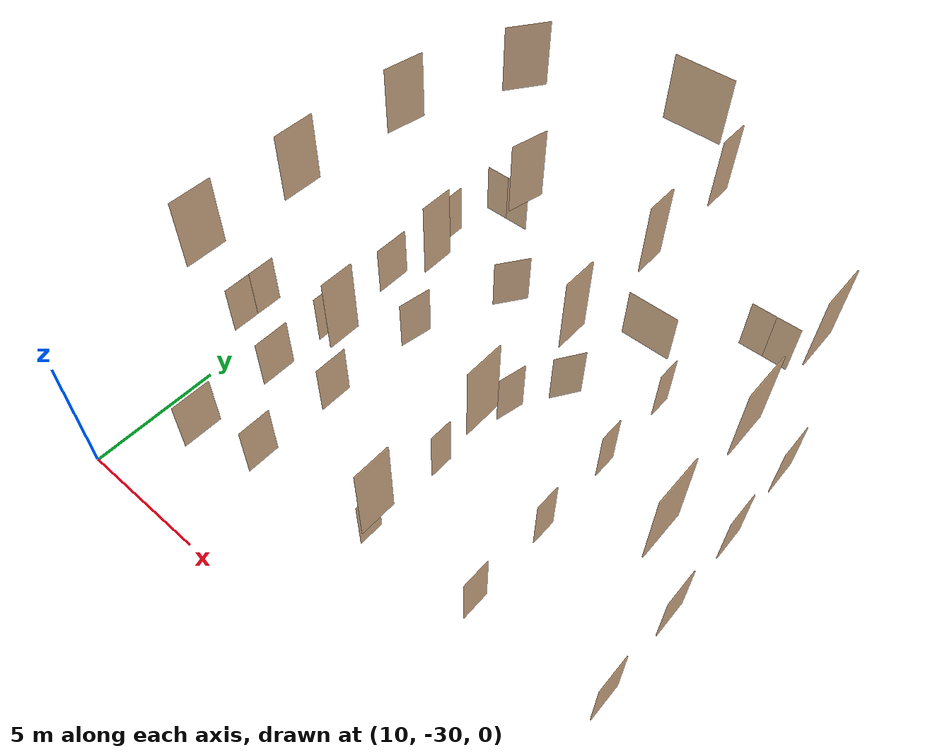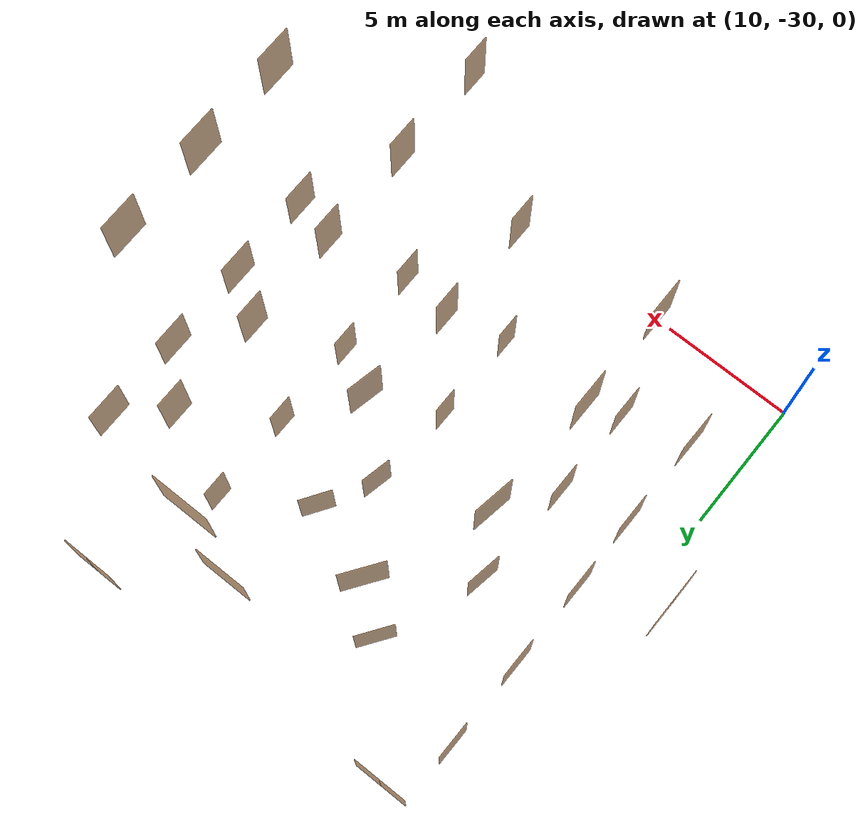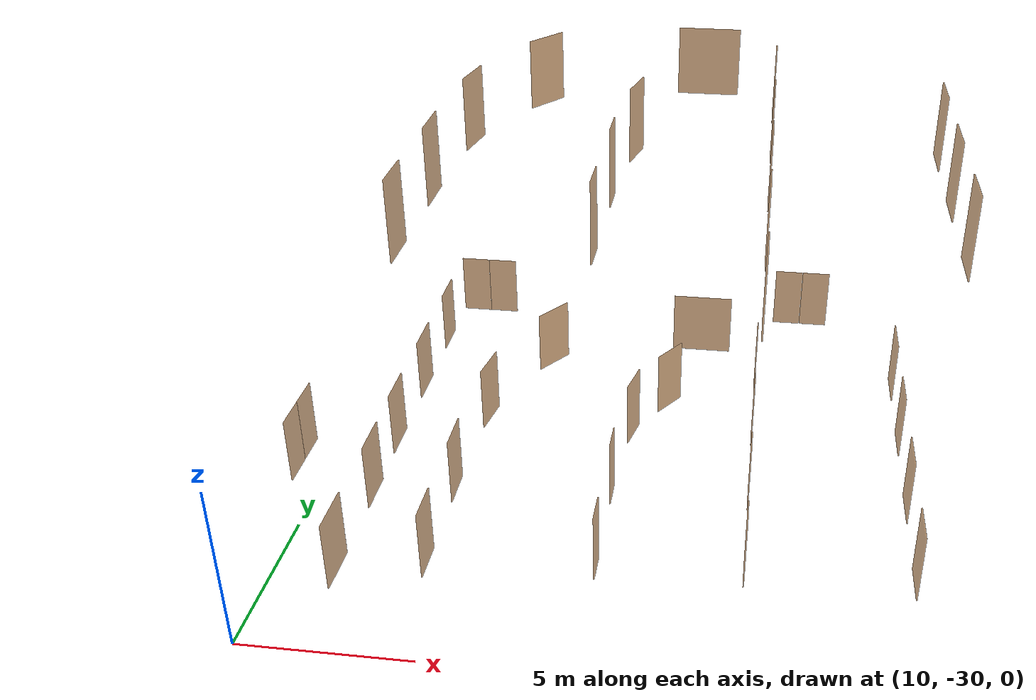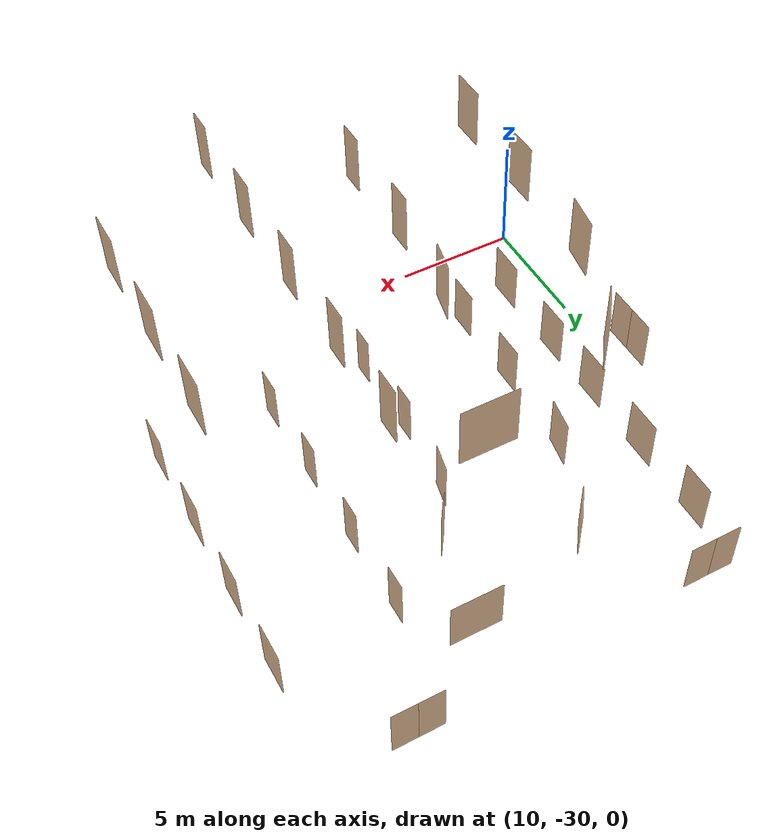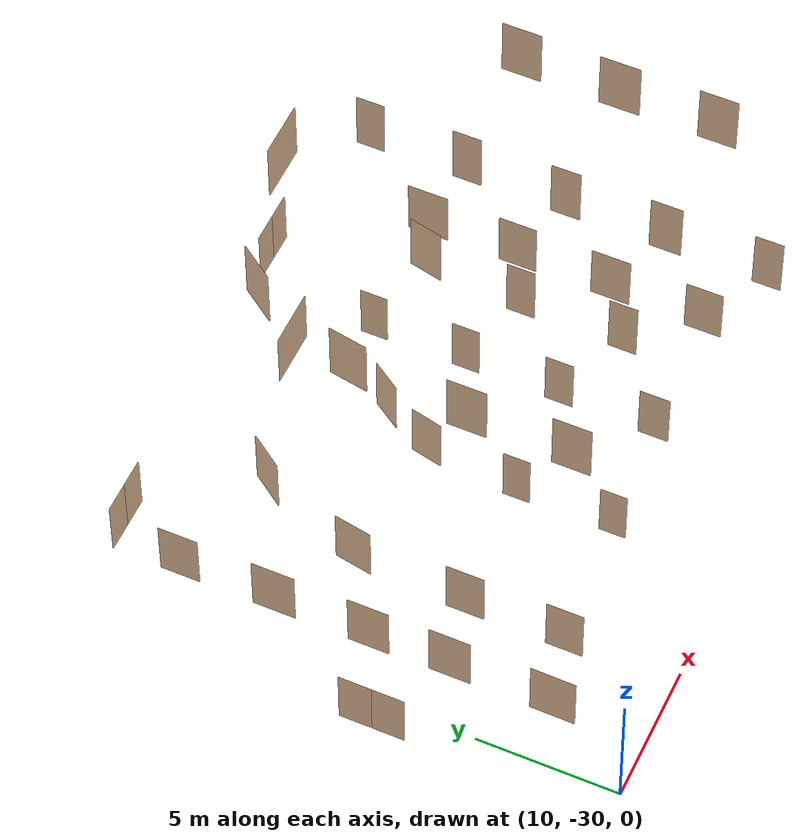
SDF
<sdf version="1.7">
 <world name="world">
  <include><uri>model://sun</uri></include>
  <model name="L1_left_consult_rm_13_outer">
   <pose>16.03554863274491 -14.728456597823172 0.0 0 0 0.9593844290063241</pose>
   <static>true</static>
   <link name="right">
    <pose>0 0 1.11 0 0 0</pose>
    <visual name="right_visual">
     <geometry><box><size>1.4433538767392087 0.03 2.2</size></box></geometry>
     <material><ambient>0.5 0.25 0 0.6</ambient><diffuse>0.5 0.25 0 0.6</diffuse></material>
    </visual>
    <collision name="right_collision">
     <geometry><box><size>1.4433538767392087 0.03 2.2</size></box></geometry>
     <surface><contact><collide_bitmask>0x02</collide_bitmask></contact></surface>
    </collision>
    <inertial>
     <mass>50.0</mass>
     <inertia><ixx>20.17041666666667</ixx><iyy>28.8469600562421</iyy><izz>8.684043389575429</izz></inertia>
    </inertial>
   </link>
   <joint name="right_joint" type="prismatic">
    <parent>world</parent>
    <child>right</child>
    <axis>
     <xyz>1 0 0</xyz>
     <limit><lower>0.0</lower><upper>1.4533538767392087</upper><effort>500.0</effort></limit>
    </axis>
   </joint>
  </model>
  <model name="L1_left_consult_rm_12_outer">
   <pose>14.50538056228608 -18.5739740779201 0.0 0 0 1.402401946784635</pose>
   <static>true</static>
   <link name="right">
    <pose>0 0 1.11 0 0 0</pose>
    <visual name="right_visual">
     <geometry><box><size>1.3727291591386541 0.03 2.2</size></box></geometry>
     <material><ambient>0.5 0.25 0 0.6</ambient><diffuse>0.5 0.25 0 0.6</diffuse></material>
    </visual>
    <collision name="right_collision">
     <geometry><box><size>1.3727291591386541 0.03 2.2</size></box></geometry>
     <surface><contact><collide_bitmask>0x02</collide_bitmask></contact></surface>
    </collision>
    <inertial>
     <mass>50.0</mass>
     <inertia><ixx>20.17041666666667</ixx><iyy>28.018272268122992</iyy><izz>7.855355601456319</izz></inertia>
    </inertial>
   </link>
   <joint name="right_joint" type="prismatic">
    <parent>world</parent>
    <child>right</child>
    <axis>
     <xyz>1 0 0</xyz>
     <limit><lower>0.0</lower><upper>1.3827291591386541</upper><effort>500.0</effort></limit>
    </axis>
   </joint>
  </model>
  <model name="L1_left_consult_rm_4_outer">
   <pose>28.179085419791573 -25.272043382946833 0.0 0 0 1.5707963267948966</pose>
   <static>true</static>
   <link name="right">
    <pose>0 0 1.11 0 0 0</pose>
    <visual name="right_visual">
     <geometry><box><size>1.3399250028845076 0.03 2.2</size></box></geometry>
     <material><ambient>0.5 0.25 0 0.6</ambient><diffuse>0.5 0.25 0 0.6</diffuse></material>
    </visual>
    <collision name="right_collision">
     <geometry><box><size>1.3399250028845076 0.03 2.2</size></box></geometry>
     <surface><contact><collide_bitmask>0x02</collide_bitmask></contact></surface>
    </collision>
    <inertial>
     <mass>50.0</mass>
     <inertia><ixx>20.17041666666667</ixx><iyy>27.64749588897937</iyy><izz>7.484579222312698</izz></inertia>
    </inertial>
   </link>
   <joint name="right_joint" type="prismatic">
    <parent>world</parent>
    <child>right</child>
    <axis>
     <xyz>1 0 0</xyz>
     <limit><lower>0.0</lower><upper>1.3499250028845076</upper><effort>500.0</effort></limit>
    </axis>
   </joint>
  </model>
  <model name="L1_left_consult_rm_3_outer">
   <pose>28.179085419791573 -21.845877081650727 0.0 0 0 1.5707963267948966</pose>
   <static>true</static>
   <link name="right">
    <pose>0 0 1.11 0 0 0</pose>
    <visual name="right_visual">
     <geometry><box><size>1.4299792315680138 0.03 2.2</size></box></geometry>
     <material><ambient>0.5 0.25 0 0.6</ambient><diffuse>0.5 0.25 0 0.6</diffuse></material>
    </visual>
    <collision name="right_collision">
     <geometry><box><size>1.4299792315680138 0.03 2.2</size></box></geometry>
     <surface><contact><collide_bitmask>0x02</collide_bitmask></contact></surface>
    </collision>
    <inertial>
     <mass>50.0</mass>
     <inertia><ixx>20.17041666666667</ixx><iyy>28.686835844649366</iyy><izz>8.523919177982698</izz></inertia>
    </inertial>
   </link>
   <joint name="right_joint" type="prismatic">
    <parent>world</parent>
    <child>right</child>
    <axis>
     <xyz>1 0 0</xyz>
     <limit><lower>0.0</lower><upper>1.4399792315680138</upper><effort>500.0</effort></limit>
    </axis>
   </joint>
  </model>
  <model name="L1_left_consult_rm_2_outer">
   <pose>28.179085419791573 -18.38420060766895 0.0 0 0 1.5707963267948966</pose>
   <static>true</static>
   <link name="right">
    <pose>0 0 1.11 0 0 0</pose>
    <visual name="right_visual">
     <geometry><box><size>1.3918306988192783 0.03 2.2</size></box></geometry>
     <material><ambient>0.5 0.25 0 0.6</ambient><diffuse>0.5 0.25 0 0.6</diffuse></material>
    </visual>
    <collision name="right_collision">
     <geometry><box><size>1.3918306988192783 0.03 2.2</size></box></geometry>
     <surface><contact><collide_bitmask>0x02</collide_bitmask></contact></surface>
    </collision>
    <inertial>
     <mass>50.0</mass>
     <inertia><ixx>20.17041666666667</ixx><iyy>28.23830289239901</iyy><izz>8.075386225732336</izz></inertia>
    </inertial>
   </link>
   <joint name="right_joint" type="prismatic">
    <parent>world</parent>
    <child>right</child>
    <axis>
     <xyz>1 0 0</xyz>
     <limit><lower>0.0</lower><upper>1.4018306988192784</upper><effort>500.0</effort></limit>
    </axis>
   </joint>
  </model>
  <model name="L1_left_consult_rm_1_outer">
   <pose>28.179085419791573 -15.017895465559029 0.0 0 0 -1.5707963267948966</pose>
   <static>true</static>
   <link name="right">
    <pose>0 0 1.11 0 0 0</pose>
    <visual name="right_visual">
     <geometry><box><size>1.4871885696703975 0.03 2.2</size></box></geometry>
     <material><ambient>0.5 0.25 0 0.6</ambient><diffuse>0.5 0.25 0 0.6</diffuse></material>
    </visual>
    <collision name="right_collision">
     <geometry><box><size>1.4871885696703975 0.03 2.2</size></box></geometry>
     <surface><contact><collide_bitmask>0x02</collide_bitmask></contact></surface>
    </collision>
    <inertial>
     <mass>50.0</mass>
     <inertia><ixx>20.17041666666667</ixx><iyy>29.38220767399285</iyy><izz>9.219291007326179</izz></inertia>
    </inertial>
   </link>
   <joint name="right_joint" type="prismatic">
    <parent>world</parent>
    <child>right</child>
    <axis>
     <xyz>1 0 0</xyz>
     <limit><lower>0.0</lower><upper>1.4971885696703975</upper><effort>500.0</effort></limit>
    </axis>
   </joint>
  </model>
  <model name="L1_left_consult_rm_10_outer">
   <pose>14.307718933887172 -26.181039190800377 0.0 0 0 -1.5707963267948966</pose>
   <static>true</static>
   <link name="right">
    <pose>0 0 1.11 0 0 0</pose>
    <visual name="right_visual">
     <geometry><box><size>1.2997034729433474 0.03 2.2</size></box></geometry>
     <material><ambient>0.5 0.25 0 0.6</ambient><diffuse>0.5 0.25 0 0.6</diffuse></material>
    </visual>
    <collision name="right_collision">
     <geometry><box><size>1.2997034729433474 0.03 2.2</size></box></geometry>
     <surface><contact><collide_bitmask>0x02</collide_bitmask></contact></surface>
    </collision>
    <inertial>
     <mass>50.0</mass>
     <inertia><ixx>20.17041666666667</ixx><iyy>27.205121323254165</iyy><izz>7.0422046565874945</izz></inertia>
    </inertial>
   </link>
   <joint name="right_joint" type="prismatic">
    <parent>world</parent>
    <child>right</child>
    <axis>
     <xyz>1 0 0</xyz>
     <limit><lower>0.0</lower><upper>1.3097034729433474</upper><effort>500.0</effort></limit>
    </axis>
   </joint>
  </model>
  <model name="L1_left_consult_rm_11_outer">
   <pose>14.307718933887172 -22.673729856544 0.0 0 0 -1.5707963267948966</pose>
   <static>true</static>
   <link name="right">
    <pose>0 0 1.11 0 0 0</pose>
    <visual name="right_visual">
     <geometry><box><size>1.346359370793431 0.03 2.2</size></box></geometry>
     <material><ambient>0.5 0.25 0 0.6</ambient><diffuse>0.5 0.25 0 0.6</diffuse></material>
    </visual>
    <collision name="right_collision">
     <geometry><box><size>1.346359370793431 0.03 2.2</size></box></geometry>
     <surface><contact><collide_bitmask>0x02</collide_bitmask></contact></surface>
    </collision>
    <inertial>
     <mass>50.0</mass>
     <inertia><ixx>20.17041666666667</ixx><iyy>27.719514813847017</iyy><izz>7.556598147180346</izz></inertia>
    </inertial>
   </link>
   <joint name="right_joint" type="prismatic">
    <parent>world</parent>
    <child>right</child>
    <axis>
     <xyz>1 0 0</xyz>
     <limit><lower>0.0</lower><upper>1.356359370793431</upper><effort>500.0</effort></limit>
    </axis>
   </joint>
  </model>
  <model name="L1_left_treatment_1">
   <pose>11.806230529595025 -13.583354486365922 0.0 0 0 1.5707963267948966</pose>
   <link name="right">
    <pose>0 0 1.11 0 0 0</pose>
    <visual name="right_visual">
     <geometry><box><size>1.418106611284182 0.03 2.2</size></box></geometry>
     <material><ambient>0.5 0.25 0 0.6</ambient><diffuse>0.5 0.25 0 0.6</diffuse></material>
    </visual>
    <collision name="right_collision">
     <geometry><box><size>1.418106611284182 0.03 2.2</size></box></geometry>
     <surface><contact><collide_bitmask>0x02</collide_bitmask></contact></surface>
    </collision>
    <inertial>
     <mass>50.0</mass>
     <inertia><ixx>20.17041666666667</ixx><iyy>28.545943170699616</iyy><izz>8.383026504032943</izz></inertia>
    </inertial>
   </link>
   <joint name="right_joint" type="prismatic">
    <parent>world</parent>
    <child>right</child>
    <axis>
     <xyz>1 0 0</xyz>
     <limit><lower>0.0</lower><upper>1.428106611284182</upper><effort>500.0</effort></limit>
    </axis>
   </joint>
   <plugin name="door" filename="libdoor.so">
    <v_max_door>0.2</v_max_door>
    <a_max_door>0.2</a_max_door>
    <a_nom_door>0.08</a_nom_door>
    <dx_min_door>0.001</dx_min_door>
    <f_max_door>100.0</f_max_door>
    <door name="L1_left_treatment_1" type="SlidingDoor" left_joint_name="empty_joint" right_joint_name="right_joint"/>
   </plugin>
  </model>
  <model name="L1_left_negative_air_pressure">
   <pose>11.837715857082431 -26.84586554363296 0.0 0 0 -1.5791183096276138</pose>
   <link name="right">
    <pose>0 0 1.11 0 0 0</pose>
    <visual name="right_visual">
     <geometry><box><size>1.5784285274029304 0.03 2.2</size></box></geometry>
     <material><ambient>0.5 0.25 0 0.6</ambient><diffuse>0.5 0.25 0 0.6</diffuse></material>
    </visual>
    <collision name="right_collision">
     <geometry><box><size>1.5784285274029304 0.03 2.2</size></box></geometry>
     <surface><contact><collide_bitmask>0x02</collide_bitmask></contact></surface>
    </collision>
    <inertial>
     <mass>50.0</mass>
     <inertia><ixx>20.17041666666667</ixx><iyy>30.547652567164103</iyy><izz>10.384735900497432</izz></inertia>
    </inertial>
   </link>
   <joint name="right_joint" type="prismatic">
    <parent>world</parent>
    <child>right</child>
    <axis>
     <xyz>1 0 0</xyz>
     <limit><lower>0.0</lower><upper>1.5884285274029304</upper><effort>500.0</effort></limit>
    </axis>
   </joint>
   <plugin name="door" filename="libdoor.so">
    <v_max_door>0.2</v_max_door>
    <a_max_door>0.2</a_max_door>
    <a_nom_door>0.08</a_nom_door>
    <dx_min_door>0.001</dx_min_door>
    <f_max_door>100.0</f_max_door>
    <door name="L1_left_negative_air_pressure" type="SlidingDoor" left_joint_name="empty_joint" right_joint_name="right_joint"/>
   </plugin>
  </model>
  <model name="L1_left_treatment_2">
   <pose>11.806230529595025 -16.992142609899634 0.0 0 0 -1.5707963267948966</pose>
   <static>true</static>
   <link name="right">
    <pose>0 0 1.11 0 0 0</pose>
    <visual name="right_visual">
     <geometry><box><size>1.5319868466597464 0.03 2.2</size></box></geometry>
     <material><ambient>0.5 0.25 0 0.6</ambient><diffuse>0.5 0.25 0 0.6</diffuse></material>
    </visual>
    <collision name="right_collision">
     <geometry><box><size>1.5319868466597464 0.03 2.2</size></box></geometry>
     <surface><contact><collide_bitmask>0x02</collide_bitmask></contact></surface>
    </collision>
    <inertial>
     <mass>50.0</mass>
     <inertia><ixx>20.17041666666667</ixx><iyy>29.945765409743643</iyy><izz>9.782848743076972</izz></inertia>
    </inertial>
   </link>
   <joint name="right_joint" type="prismatic">
    <parent>world</parent>
    <child>right</child>
    <axis>
     <xyz>1 0 0</xyz>
     <limit><lower>0.0</lower><upper>1.5419868466597464</upper><effort>500.0</effort></limit>
    </axis>
   </joint>
  </model>
  <model name="L1_left_counsel_1">
   <pose>11.806230529595025 -20.376902811430348 0.0 0 0 1.5707963267948966</pose>
   <static>true</static>
   <link name="right">
    <pose>0 0 1.11 0 0 0</pose>
    <visual name="right_visual">
     <geometry><box><size>1.4607242029152745 0.03 2.2</size></box></geometry>
     <material><ambient>0.5 0.25 0 0.6</ambient><diffuse>0.5 0.25 0 0.6</diffuse></material>
    </visual>
    <collision name="right_collision">
     <geometry><box><size>1.4607242029152745 0.03 2.2</size></box></geometry>
     <surface><contact><collide_bitmask>0x02</collide_bitmask></contact></surface>
    </collision>
    <inertial>
     <mass>50.0</mass>
     <inertia><ixx>20.17041666666667</ixx><iyy>29.057146654093604</iyy><izz>8.894229987426936</izz></inertia>
    </inertial>
   </link>
   <joint name="right_joint" type="prismatic">
    <parent>world</parent>
    <child>right</child>
    <axis>
     <xyz>1 0 0</xyz>
     <limit><lower>0.0</lower><upper>1.4707242029152745</upper><effort>500.0</effort></limit>
    </axis>
   </joint>
  </model>
  <model name="L1_left_counsel_4">
   <pose>11.84769047344334 -23.23487942771434 0.0 0 0 -1.5707963267948966</pose>
   <static>true</static>
   <link name="right">
    <pose>0 0 1.11 0 0 0</pose>
    <visual name="right_visual">
     <geometry><box><size>1.465758624668284 0.03 2.2</size></box></geometry>
     <material><ambient>0.5 0.25 0 0.6</ambient><diffuse>0.5 0.25 0 0.6</diffuse></material>
    </visual>
    <collision name="right_collision">
     <geometry><box><size>1.465758624668284 0.03 2.2</size></box></geometry>
     <surface><contact><collide_bitmask>0x02</collide_bitmask></contact></surface>
    </collision>
    <inertial>
     <mass>50.0</mass>
     <inertia><ixx>20.17041666666667</ixx><iyy>29.118534774122757</iyy><izz>8.955618107456084</izz></inertia>
    </inertial>
   </link>
   <joint name="right_joint" type="prismatic">
    <parent>world</parent>
    <child>right</child>
    <axis>
     <xyz>1 0 0</xyz>
     <limit><lower>0.0</lower><upper>1.4757586246682841</upper><effort>500.0</effort></limit>
    </axis>
   </joint>
  </model>
  <model name="L1_left_counsel_3">
   <pose>9.016407061266882 -22.377170108841987 0.0 0 0 -1.5707963267948966</pose>
   <static>true</static>
   <link name="right">
    <pose>0 0 1.11 0 0 0</pose>
    <visual name="right_visual">
     <geometry><box><size>1.1436094765585965 0.03 2.2</size></box></geometry>
     <material><ambient>0.5 0.25 0 0.6</ambient><diffuse>0.5 0.25 0 0.6</diffuse></material>
    </visual>
    <collision name="right_collision">
     <geometry><box><size>1.1436094765585965 0.03 2.2</size></box></geometry>
     <surface><contact><collide_bitmask>0x02</collide_bitmask></contact></surface>
    </collision>
    <inertial>
     <mass>50.0</mass>
     <inertia><ixx>20.17041666666667</ixx><iyy>25.616010978644287</iyy><izz>5.453094311977613</izz></inertia>
    </inertial>
   </link>
   <joint name="right_joint" type="prismatic">
    <parent>world</parent>
    <child>right</child>
    <axis>
     <xyz>1 0 0</xyz>
     <limit><lower>0.0</lower><upper>1.1536094765585965</upper><effort>500.0</effort></limit>
    </axis>
   </joint>
  </model>
  <model name="L1_left_counsel_2">
   <pose>9.016407061266882 -21.218930041152284 0.0 0 0 1.5707963267948966</pose>
   <static>true</static>
   <link name="right">
    <pose>0 0 1.11 0 0 0</pose>
    <visual name="right_visual">
     <geometry><box><size>1.1528706588208146 0.03 2.2</size></box></geometry>
     <material><ambient>0.5 0.25 0 0.6</ambient><diffuse>0.5 0.25 0 0.6</diffuse></material>
    </visual>
    <collision name="right_collision">
     <geometry><box><size>1.1528706588208146 0.03 2.2</size></box></geometry>
     <surface><contact><collide_bitmask>0x02</collide_bitmask></contact></surface>
    </collision>
    <inertial>
     <mass>50.0</mass>
     <inertia><ixx>20.17041666666667</ixx><iyy>25.70462814987475</iyy><izz>5.541711483208079</izz></inertia>
    </inertial>
   </link>
   <joint name="right_joint" type="prismatic">
    <parent>world</parent>
    <child>right</child>
    <axis>
     <xyz>1 0 0</xyz>
     <limit><lower>0.0</lower><upper>1.1628706588208146</upper><effort>500.0</effort></limit>
    </axis>
   </joint>
  </model>
  <model name="L1_existing_ahu">
   <pose>12.856634360216926 -11.116353217183963 0.0 0 0 -3.1406699672959486</pose>
   <static>true</static>
   <link name="right">
    <pose>0.5252021388763539 0 1.11 0 0 0</pose>
    <visual name="right_visual">
     <geometry><box><size>1.0404042777527078 0.03 2.2</size></box></geometry>
     <material><ambient>0.5 0.25 0 0.6</ambient><diffuse>0.5 0.25 0 0.6</diffuse></material>
    </visual>
    <collision name="right_collision">
     <geometry><box><size>1.0404042777527078 0.03 2.2</size></box></geometry>
     <surface><contact><collide_bitmask>0x02</collide_bitmask></contact></surface>
    </collision>
    <inertial>
     <mass>50.0</mass>
     <inertia><ixx>20.17041666666667</ixx><iyy>24.676837754858894</iyy><izz>4.513921088192224</izz></inertia>
    </inertial>
   </link>
   <joint name="right_joint" type="revolute">
    <parent>world</parent>
    <child>right</child>
    <axis><xyz>0 0 -1</xyz><limit><lower>0</lower><upper>1.57</upper></limit></axis>
    <pose>0.5252021388763539 0 0 0 0 0</pose>
   </joint>
   <link name="left">
    <pose>-0.5252021388763539 0 1.11 0 0 0</pose>
    <visual name="left_visual">
     <geometry><box><size>1.0404042777527078 0.03 2.2</size></box></geometry>
     <material><ambient>0.5 0.25 0 0.6</ambient><diffuse>0.5 0.25 0 0.6</diffuse></material>
    </visual>
    <collision name="left_collision">
     <geometry><box><size>1.0404042777527078 0.03 2.2</size></box></geometry>
     <surface><contact><collide_bitmask>0x02</collide_bitmask></contact></surface>
    </collision>
    <inertial>
     <mass>50.0</mass>
     <inertia><ixx>20.17041666666667</ixx><iyy>24.676837754858894</iyy><izz>4.513921088192224</izz></inertia>
    </inertial>
   </link>
   <joint name="left_joint" type="revolute">
    <parent>world</parent>
    <child>left</child>
    <axis><xyz>0 0 -1</xyz><limit><lower>-1.57</lower><upper>0</upper></limit></axis>
    <pose>-0.5252021388763539 0 0 0 0 0</pose>
   </joint>
  </model>
  <model name="L1_left_consult_rm_2_inner">
   <pose>23.381523787546655 -18.60085573631785 0.0 0 0 -1.5707963267948966</pose>
   <static>true</static>
   <link name="right">
    <pose>0 0 1.11 0 0 0</pose>
    <visual name="right_visual">
     <geometry><box><size>0.9945421329948851 0.03 2.2</size></box></geometry>
     <material><ambient>0.5 0.25 0 0.6</ambient><diffuse>0.5 0.25 0 0.6</diffuse></material>
    </visual>
    <collision name="right_collision">
     <geometry><box><size>0.9945421329948851 0.03 2.2</size></box></geometry>
     <surface><contact><collide_bitmask>0x02</collide_bitmask></contact></surface>
    </collision>
    <inertial>
     <mass>50.0</mass>
     <inertia><ixx>20.17041666666667</ixx><iyy>24.287975226258403</iyy><izz>4.125058559591733</izz></inertia>
    </inertial>
   </link>
   <joint name="right_joint" type="prismatic">
    <parent>world</parent>
    <child>right</child>
    <axis>
     <xyz>1 0 0</xyz>
     <limit><lower>0.0</lower><upper>1.0045421329948852</upper><effort>500.0</effort></limit>
    </axis>
   </joint>
  </model>
  <model name="L1_left_consult_rm_13_inner">
   <pose>20.473727933541035 -17.004284450598067 0.0 0 0 0.9869285289705991</pose>
   <static>true</static>
   <link name="right">
    <pose>0 0 1.11 0 0 0</pose>
    <visual name="right_visual">
     <geometry><box><size>1.2252035838140947 0.03 2.2</size></box></geometry>
     <material><ambient>0.5 0.25 0 0.6</ambient><diffuse>0.5 0.25 0 0.6</diffuse></material>
    </visual>
    <collision name="right_collision">
     <geometry><box><size>1.2252035838140947 0.03 2.2</size></box></geometry>
     <surface><contact><collide_bitmask>0x02</collide_bitmask></contact></surface>
    </collision>
    <inertial>
     <mass>50.0</mass>
     <inertia><ixx>20.17041666666667</ixx><iyy>26.421349257462094</iyy><izz>6.258432590795422</izz></inertia>
    </inertial>
   </link>
   <joint name="right_joint" type="revolute">
    <parent>world</parent>
    <child>right</child>
    <axis><xyz>0 0 -1</xyz><limit><lower>0</lower><upper>1.57</upper></limit></axis>
    <pose>0.6176017919070473 0 0 0 0 0</pose>
   </joint>
  </model>
  <model name="L1_left_consult_rm_12_inner">
   <pose>19.442438752355695 -18.948876966270543 0.0 0 0 1.3549047324942773</pose>
   <static>true</static>
   <link name="right">
    <pose>0 0 1.11 0 0 0</pose>
    <visual name="right_visual">
     <geometry><box><size>1.1707228872175774 0.03 2.2</size></box></geometry>
     <material><ambient>0.5 0.25 0 0.6</ambient><diffuse>0.5 0.25 0 0.6</diffuse></material>
    </visual>
    <collision name="right_collision">
     <geometry><box><size>1.1707228872175774 0.03 2.2</size></box></geometry>
     <surface><contact><collide_bitmask>0x02</collide_bitmask></contact></surface>
    </collision>
    <inertial>
     <mass>50.0</mass>
     <inertia><ixx>20.17041666666667</ixx><iyy>25.87746699439609</iyy><izz>5.714550327729419</izz></inertia>
    </inertial>
   </link>
   <joint name="right_joint" type="revolute">
    <parent>world</parent>
    <child>right</child>
    <axis><xyz>0 0 -1</xyz><limit><lower>0</lower><upper>1.57</upper></limit></axis>
    <pose>0.5903614436087887 0 0 0 0 0</pose>
   </joint>
  </model>
  <model name="L1_left_consult_rm_11_inner">
   <pose>19.167982000692298 -22.335117880081555 0.0 0 0 1.5707963267948966</pose>
   <static>true</static>
   <link name="right">
    <pose>0 0 1.11 0 0 0</pose>
    <visual name="right_visual">
     <geometry><box><size>0.960216530133456 0.03 2.2</size></box></geometry>
     <material><ambient>0.5 0.25 0 0.6</ambient><diffuse>0.5 0.25 0 0.6</diffuse></material>
    </visual>
    <collision name="right_collision">
     <geometry><box><size>0.960216530133456 0.03 2.2</size></box></geometry>
     <surface><contact><collide_bitmask>0x02</collide_bitmask></contact></surface>
    </collision>
    <inertial>
     <mass>50.0</mass>
     <inertia><ixx>20.17041666666667</ixx><iyy>24.00839910308973</iyy><izz>3.8454824364230595</izz></inertia>
    </inertial>
   </link>
   <joint name="right_joint" type="prismatic">
    <parent>world</parent>
    <child>right</child>
    <axis>
     <xyz>1 0 0</xyz>
     <limit><lower>0.0</lower><upper>0.970216530133456</upper><effort>500.0</effort></limit>
    </axis>
   </joint>
  </model>
  <model name="L1_left_consult_rm_10_inner">
   <pose>19.167982000692298 -25.7948963501404 0.0 0 0 1.5707963267948966</pose>
   <static>true</static>
   <link name="right">
    <pose>0 0 1.11 0 0 0</pose>
    <visual name="right_visual">
     <geometry><box><size>0.9495554017153205 0.03 2.2</size></box></geometry>
     <material><ambient>0.5 0.25 0 0.6</ambient><diffuse>0.5 0.25 0 0.6</diffuse></material>
    </visual>
    <collision name="right_collision">
     <geometry><box><size>0.9495554017153205 0.03 2.2</size></box></geometry>
     <surface><contact><collide_bitmask>0x02</collide_bitmask></contact></surface>
    </collision>
    <inertial>
     <mass>50.0</mass>
     <inertia><ixx>20.17041666666667</ixx><iyy>23.923564420528106</iyy><izz>3.760647753861432</izz></inertia>
    </inertial>
   </link>
   <joint name="right_joint" type="prismatic">
    <parent>world</parent>
    <child>right</child>
    <axis>
     <xyz>1 0 0</xyz>
     <limit><lower>0.0</lower><upper>0.9595554017153205</upper><effort>500.0</effort></limit>
    </axis>
   </joint>
  </model>
  <model name="L1_left_consult_rm_4_inner">
   <pose>23.381523787546655 -25.472760663051446 0.0 0 0 -1.5707963267948966</pose>
   <static>true</static>
   <link name="right">
    <pose>0 0 1.11 0 0 0</pose>
    <visual name="right_visual">
     <geometry><box><size>1.0858616976270115 0.03 2.2</size></box></geometry>
     <material><ambient>0.5 0.25 0 0.6</ambient><diffuse>0.5 0.25 0 0.6</diffuse></material>
    </visual>
    <collision name="right_collision">
     <geometry><box><size>1.0858616976270115 0.03 2.2</size></box></geometry>
     <surface><contact><collide_bitmask>0x02</collide_bitmask></contact></surface>
    </collision>
    <inertial>
     <mass>50.0</mass>
     <inertia><ixx>20.17041666666667</ixx><iyy>25.079565109889238</iyy><izz>4.916648443222564</izz></inertia>
    </inertial>
   </link>
   <joint name="right_joint" type="prismatic">
    <parent>world</parent>
    <child>right</child>
    <axis>
     <xyz>1 0 0</xyz>
     <limit><lower>0.0</lower><upper>1.0958616976270115</upper><effort>500.0</effort></limit>
    </axis>
   </joint>
  </model>
  <model name="L1_left_consult_rm_1_inner">
   <pose>23.381523787546655 -15.199148109688101 0.0 0 0 -1.5707963267948966</pose>
   <static>true</static>
   <link name="right">
    <pose>0 0 1.11 0 0 0</pose>
    <visual name="right_visual">
     <geometry><box><size>0.9793042575285555 0.03 2.2</size></box></geometry>
     <material><ambient>0.5 0.25 0 0.6</ambient><diffuse>0.5 0.25 0 0.6</diffuse></material>
    </visual>
    <collision name="right_collision">
     <geometry><box><size>0.9793042575285555 0.03 2.2</size></box></geometry>
     <surface><contact><collide_bitmask>0x02</collide_bitmask></contact></surface>
    </collision>
    <inertial>
     <mass>50.0</mass>
     <inertia><ixx>20.17041666666667</ixx><iyy>24.162653453389822</iyy><izz>3.999736786723148</izz></inertia>
    </inertial>
   </link>
   <joint name="right_joint" type="prismatic">
    <parent>world</parent>
    <child>right</child>
    <axis>
     <xyz>1 0 0</xyz>
     <limit><lower>0.0</lower><upper>0.9893042575285556</upper><effort>500.0</effort></limit>
    </axis>
   </joint>
  </model>
  <model name="L1_left_consult_rm_3_inner">
   <pose>23.381523787546655 -22.029202722972215 0.0 0 0 -1.5707963267948966</pose>
   <static>true</static>
   <link name="right">
    <pose>0 0 1.11 0 0 0</pose>
    <visual name="right_visual">
     <geometry><box><size>1.0173451021114575 0.03 2.2</size></box></geometry>
     <material><ambient>0.5 0.25 0 0.6</ambient><diffuse>0.5 0.25 0 0.6</diffuse></material>
    </visual>
    <collision name="right_collision">
     <geometry><box><size>1.0173451021114575 0.03 2.2</size></box></geometry>
     <surface><contact><collide_bitmask>0x02</collide_bitmask></contact></surface>
    </collision>
    <inertial>
     <mass>50.0</mass>
     <inertia><ixx>20.17041666666667</ixx><iyy>24.479129403292387</iyy><izz>4.316212736625716</izz></inertia>
    </inertial>
   </link>
   <joint name="right_joint" type="prismatic">
    <parent>world</parent>
    <child>right</child>
    <axis>
     <xyz>1 0 0</xyz>
     <limit><lower>0.0</lower><upper>1.0273451021114575</upper><effort>500.0</effort></limit>
    </axis>
   </joint>
  </model>
  <model name="L1_existing_single_ahu">
   <pose>24.978579670012714 -10.622360678435454 0.0 0 0 3.141592653589793</pose>
   <static>true</static>
   <link name="right">
    <pose>0.502641244567517 0 1.11 0 0 0</pose>
    <visual name="right_visual">
     <geometry><box><size>0.995282489135034 0.03 2.2</size></box></geometry>
     <material><ambient>0.5 0.25 0 0.6</ambient><diffuse>0.5 0.25 0 0.6</diffuse></material>
    </visual>
    <collision name="right_collision">
     <geometry><box><size>0.995282489135034 0.03 2.2</size></box></geometry>
     <surface><contact><collide_bitmask>0x02</collide_bitmask></contact></surface>
    </collision>
    <inertial>
     <mass>50.0</mass>
     <inertia><ixx>20.17041666666667</ixx><iyy>24.29411347157846</iyy><izz>4.131196804911788</izz></inertia>
    </inertial>
   </link>
   <joint name="right_joint" type="revolute">
    <parent>world</parent>
    <child>right</child>
    <axis><xyz>0 0 -1</xyz><limit><lower>0</lower><upper>1.57</upper></limit></axis>
    <pose>0.502641244567517 0 0 0 0 0</pose>
   </joint>
   <link name="left">
    <pose>-0.502641244567517 0 1.11 0 0 0</pose>
    <visual name="left_visual">
     <geometry><box><size>0.995282489135034 0.03 2.2</size></box></geometry>
     <material><ambient>0.5 0.25 0 0.6</ambient><diffuse>0.5 0.25 0 0.6</diffuse></material>
    </visual>
    <collision name="left_collision">
     <geometry><box><size>0.995282489135034 0.03 2.2</size></box></geometry>
     <surface><contact><collide_bitmask>0x02</collide_bitmask></contact></surface>
    </collision>
    <inertial>
     <mass>50.0</mass>
     <inertia><ixx>20.17041666666667</ixx><iyy>24.29411347157846</iyy><izz>4.131196804911788</izz></inertia>
    </inertial>
   </link>
   <joint name="left_joint" type="revolute">
    <parent>world</parent>
    <child>left</child>
    <axis><xyz>0 0 -1</xyz><limit><lower>-1.57</lower><upper>0</upper></limit></axis>
    <pose>-0.502641244567517 0 0 0 0 0</pose>
   </joint>
  </model>
  <model name="L1_left_inner">
   <pose>21.332204530594996 -13.113995615553259 0.0 0 0 0.0</pose>
   <link name="right">
    <pose>0 0 1.11 0 0 0</pose>
    <visual name="right_visual">
     <geometry><box><size>2.0904845967462773 0.03 2.2</size></box></geometry>
     <material><ambient>0.5 0.25 0 0.6</ambient><diffuse>0.5 0.25 0 0.6</diffuse></material>
    </visual>
    <collision name="right_collision">
     <geometry><box><size>2.0904845967462773 0.03 2.2</size></box></geometry>
     <surface><contact><collide_bitmask>0x02</collide_bitmask></contact></surface>
    </collision>
    <inertial>
     <mass>50.0</mass>
     <inertia><ixx>20.17041666666667</ixx><iyy>38.37552437180603</iyy><izz>18.212607705139355</izz></inertia>
    </inertial>
   </link>
   <joint name="right_joint" type="prismatic">
    <parent>world</parent>
    <child>right</child>
    <axis>
     <xyz>1 0 0</xyz>
     <limit><lower>0.0</lower><upper>2.100484596746277</upper><effort>500.0</effort></limit>
    </axis>
   </joint>
   <plugin name="door" filename="libdoor.so">
    <v_max_door>0.2</v_max_door>
    <a_max_door>0.2</a_max_door>
    <a_nom_door>0.08</a_nom_door>
    <dx_min_door>0.001</dx_min_door>
    <f_max_door>100.0</f_max_door>
    <door name="L1_left_inner" type="SlidingDoor" left_joint_name="empty_joint" right_joint_name="right_joint"/>
   </plugin>
  </model>
  <model name="L2_left_consult_rm_13_outer">
   <pose>16.03554863274491 -14.728456597823172 10.0 0 0 0.9593844290063241</pose>
   <static>true</static>
   <link name="right">
    <pose>0 0 1.11 0 0 0</pose>
    <visual name="right_visual">
     <geometry><box><size>1.4433538767392087 0.03 2.2</size></box></geometry>
     <material><ambient>0.5 0.25 0 0.6</ambient><diffuse>0.5 0.25 0 0.6</diffuse></material>
    </visual>
    <collision name="right_collision">
     <geometry><box><size>1.4433538767392087 0.03 2.2</size></box></geometry>
     <surface><contact><collide_bitmask>0x02</collide_bitmask></contact></surface>
    </collision>
    <inertial>
     <mass>50.0</mass>
     <inertia><ixx>20.17041666666667</ixx><iyy>28.8469600562421</iyy><izz>8.684043389575429</izz></inertia>
    </inertial>
   </link>
   <joint name="right_joint" type="prismatic">
    <parent>world</parent>
    <child>right</child>
    <axis>
     <xyz>1 0 0</xyz>
     <limit><lower>0.0</lower><upper>1.4533538767392087</upper><effort>500.0</effort></limit>
    </axis>
   </joint>
  </model>
  <model name="L2_left_consult_rm_12_outer">
   <pose>14.50538056228608 -18.5739740779201 10.0 0 0 1.402401946784635</pose>
   <static>true</static>
   <link name="right">
    <pose>0 0 1.11 0 0 0</pose>
    <visual name="right_visual">
     <geometry><box><size>1.3727291591386541 0.03 2.2</size></box></geometry>
     <material><ambient>0.5 0.25 0 0.6</ambient><diffuse>0.5 0.25 0 0.6</diffuse></material>
    </visual>
    <collision name="right_collision">
     <geometry><box><size>1.3727291591386541 0.03 2.2</size></box></geometry>
     <surface><contact><collide_bitmask>0x02</collide_bitmask></contact></surface>
    </collision>
    <inertial>
     <mass>50.0</mass>
     <inertia><ixx>20.17041666666667</ixx><iyy>28.018272268122992</iyy><izz>7.855355601456319</izz></inertia>
    </inertial>
   </link>
   <joint name="right_joint" type="prismatic">
    <parent>world</parent>
    <child>right</child>
    <axis>
     <xyz>1 0 0</xyz>
     <limit><lower>0.0</lower><upper>1.3827291591386541</upper><effort>500.0</effort></limit>
    </axis>
   </joint>
  </model>
  <model name="L2_left_consult_rm_4_outer">
   <pose>28.179085419791573 -25.272043382946833 10.0 0 0 1.5707963267948966</pose>
   <static>true</static>
   <link name="right">
    <pose>0 0 1.11 0 0 0</pose>
    <visual name="right_visual">
     <geometry><box><size>1.3399250028845076 0.03 2.2</size></box></geometry>
     <material><ambient>0.5 0.25 0 0.6</ambient><diffuse>0.5 0.25 0 0.6</diffuse></material>
    </visual>
    <collision name="right_collision">
     <geometry><box><size>1.3399250028845076 0.03 2.2</size></box></geometry>
     <surface><contact><collide_bitmask>0x02</collide_bitmask></contact></surface>
    </collision>
    <inertial>
     <mass>50.0</mass>
     <inertia><ixx>20.17041666666667</ixx><iyy>27.64749588897937</iyy><izz>7.484579222312698</izz></inertia>
    </inertial>
   </link>
   <joint name="right_joint" type="prismatic">
    <parent>world</parent>
    <child>right</child>
    <axis>
     <xyz>1 0 0</xyz>
     <limit><lower>0.0</lower><upper>1.3499250028845076</upper><effort>500.0</effort></limit>
    </axis>
   </joint>
  </model>
  <model name="L2_left_consult_rm_3_outer">
   <pose>28.179085419791573 -21.845877081650727 10.0 0 0 1.5707963267948966</pose>
   <static>true</static>
   <link name="right">
    <pose>0 0 1.11 0 0 0</pose>
    <visual name="right_visual">
     <geometry><box><size>1.4299792315680138 0.03 2.2</size></box></geometry>
     <material><ambient>0.5 0.25 0 0.6</ambient><diffuse>0.5 0.25 0 0.6</diffuse></material>
    </visual>
    <collision name="right_collision">
     <geometry><box><size>1.4299792315680138 0.03 2.2</size></box></geometry>
     <surface><contact><collide_bitmask>0x02</collide_bitmask></contact></surface>
    </collision>
    <inertial>
     <mass>50.0</mass>
     <inertia><ixx>20.17041666666667</ixx><iyy>28.686835844649366</iyy><izz>8.523919177982698</izz></inertia>
    </inertial>
   </link>
   <joint name="right_joint" type="prismatic">
    <parent>world</parent>
    <child>right</child>
    <axis>
     <xyz>1 0 0</xyz>
     <limit><lower>0.0</lower><upper>1.4399792315680138</upper><effort>500.0</effort></limit>
    </axis>
   </joint>
  </model>
  <model name="L2_left_consult_rm_2_outer">
   <pose>28.179085419791573 -18.38420060766895 10.0 0 0 1.5707963267948966</pose>
   <static>true</static>
   <link name="right">
    <pose>0 0 1.11 0 0 0</pose>
    <visual name="right_visual">
     <geometry><box><size>1.3918306988192783 0.03 2.2</size></box></geometry>
     <material><ambient>0.5 0.25 0 0.6</ambient><diffuse>0.5 0.25 0 0.6</diffuse></material>
    </visual>
    <collision name="right_collision">
     <geometry><box><size>1.3918306988192783 0.03 2.2</size></box></geometry>
     <surface><contact><collide_bitmask>0x02</collide_bitmask></contact></surface>
    </collision>
    <inertial>
     <mass>50.0</mass>
     <inertia><ixx>20.17041666666667</ixx><iyy>28.23830289239901</iyy><izz>8.075386225732336</izz></inertia>
    </inertial>
   </link>
   <joint name="right_joint" type="prismatic">
    <parent>world</parent>
    <child>right</child>
    <axis>
     <xyz>1 0 0</xyz>
     <limit><lower>0.0</lower><upper>1.4018306988192784</upper><effort>500.0</effort></limit>
    </axis>
   </joint>
  </model>
  <model name="L2_left_consult_rm_10_outer">
   <pose>14.307718933887172 -26.181039190800377 10.0 0 0 -1.5707963267948966</pose>
   <static>true</static>
   <link name="right">
    <pose>0 0 1.11 0 0 0</pose>
    <visual name="right_visual">
     <geometry><box><size>1.2997034729433474 0.03 2.2</size></box></geometry>
     <material><ambient>0.5 0.25 0 0.6</ambient><diffuse>0.5 0.25 0 0.6</diffuse></material>
    </visual>
    <collision name="right_collision">
     <geometry><box><size>1.2997034729433474 0.03 2.2</size></box></geometry>
     <surface><contact><collide_bitmask>0x02</collide_bitmask></contact></surface>
    </collision>
    <inertial>
     <mass>50.0</mass>
     <inertia><ixx>20.17041666666667</ixx><iyy>27.205121323254165</iyy><izz>7.0422046565874945</izz></inertia>
    </inertial>
   </link>
   <joint name="right_joint" type="prismatic">
    <parent>world</parent>
    <child>right</child>
    <axis>
     <xyz>1 0 0</xyz>
     <limit><lower>0.0</lower><upper>1.3097034729433474</upper><effort>500.0</effort></limit>
    </axis>
   </joint>
  </model>
  <model name="L2_left_consult_rm_11_outer">
   <pose>14.307718933887172 -22.673729856544 10.0 0 0 -1.5707963267948966</pose>
   <static>true</static>
   <link name="right">
    <pose>0 0 1.11 0 0 0</pose>
    <visual name="right_visual">
     <geometry><box><size>1.346359370793431 0.03 2.2</size></box></geometry>
     <material><ambient>0.5 0.25 0 0.6</ambient><diffuse>0.5 0.25 0 0.6</diffuse></material>
    </visual>
    <collision name="right_collision">
     <geometry><box><size>1.346359370793431 0.03 2.2</size></box></geometry>
     <surface><contact><collide_bitmask>0x02</collide_bitmask></contact></surface>
    </collision>
    <inertial>
     <mass>50.0</mass>
     <inertia><ixx>20.17041666666667</ixx><iyy>27.719514813847017</iyy><izz>7.556598147180346</izz></inertia>
    </inertial>
   </link>
   <joint name="right_joint" type="prismatic">
    <parent>world</parent>
    <child>right</child>
    <axis>
     <xyz>1 0 0</xyz>
     <limit><lower>0.0</lower><upper>1.356359370793431</upper><effort>500.0</effort></limit>
    </axis>
   </joint>
  </model>
  <model name="L2_left_consult_rm_12_inner">
   <pose>19.442438752355695 -18.948876966270543 10.0 0 0 1.3549047324942773</pose>
   <static>true</static>
   <link name="right">
    <pose>0 0 1.11 0 0 0</pose>
    <visual name="right_visual">
     <geometry><box><size>1.1707228872175774 0.03 2.2</size></box></geometry>
     <material><ambient>0.5 0.25 0 0.6</ambient><diffuse>0.5 0.25 0 0.6</diffuse></material>
    </visual>
    <collision name="right_collision">
     <geometry><box><size>1.1707228872175774 0.03 2.2</size></box></geometry>
     <surface><contact><collide_bitmask>0x02</collide_bitmask></contact></surface>
    </collision>
    <inertial>
     <mass>50.0</mass>
     <inertia><ixx>20.17041666666667</ixx><iyy>25.87746699439609</iyy><izz>5.714550327729419</izz></inertia>
    </inertial>
   </link>
   <joint name="right_joint" type="revolute">
    <parent>world</parent>
    <child>right</child>
    <axis><xyz>0 0 -1</xyz><limit><lower>0</lower><upper>1.57</upper></limit></axis>
    <pose>0.5903614436087887 0 0 0 0 0</pose>
   </joint>
  </model>
  <model name="L2_left_consult_rm_11_inner">
   <pose>19.167982000692298 -22.335117880081555 10.0 0 0 1.5707963267948966</pose>
   <static>true</static>
   <link name="right">
    <pose>0 0 1.11 0 0 0</pose>
    <visual name="right_visual">
     <geometry><box><size>0.960216530133456 0.03 2.2</size></box></geometry>
     <material><ambient>0.5 0.25 0 0.6</ambient><diffuse>0.5 0.25 0 0.6</diffuse></material>
    </visual>
    <collision name="right_collision">
     <geometry><box><size>0.960216530133456 0.03 2.2</size></box></geometry>
     <surface><contact><collide_bitmask>0x02</collide_bitmask></contact></surface>
    </collision>
    <inertial>
     <mass>50.0</mass>
     <inertia><ixx>20.17041666666667</ixx><iyy>24.00839910308973</iyy><izz>3.8454824364230595</izz></inertia>
    </inertial>
   </link>
   <joint name="right_joint" type="prismatic">
    <parent>world</parent>
    <child>right</child>
    <axis>
     <xyz>1 0 0</xyz>
     <limit><lower>0.0</lower><upper>0.970216530133456</upper><effort>500.0</effort></limit>
    </axis>
   </joint>
  </model>
  <model name="L2_left_consult_rm_10_inner">
   <pose>19.167982000692298 -25.7948963501404 10.0 0 0 1.5707963267948966</pose>
   <static>true</static>
   <link name="right">
    <pose>0 0 1.11 0 0 0</pose>
    <visual name="right_visual">
     <geometry><box><size>0.9495554017153205 0.03 2.2</size></box></geometry>
     <material><ambient>0.5 0.25 0 0.6</ambient><diffuse>0.5 0.25 0 0.6</diffuse></material>
    </visual>
    <collision name="right_collision">
     <geometry><box><size>0.9495554017153205 0.03 2.2</size></box></geometry>
     <surface><contact><collide_bitmask>0x02</collide_bitmask></contact></surface>
    </collision>
    <inertial>
     <mass>50.0</mass>
     <inertia><ixx>20.17041666666667</ixx><iyy>23.923564420528106</iyy><izz>3.760647753861432</izz></inertia>
    </inertial>
   </link>
   <joint name="right_joint" type="prismatic">
    <parent>world</parent>
    <child>right</child>
    <axis>
     <xyz>1 0 0</xyz>
     <limit><lower>0.0</lower><upper>0.9595554017153205</upper><effort>500.0</effort></limit>
    </axis>
   </joint>
  </model>
  <model name="L2_left_consult_rm_5_inner">
   <pose>23.381523787546655 -28.936119764624465 10.0 0 0 -1.5707963267948966</pose>
   <static>true</static>
   <link name="right">
    <pose>0 0 1.11 0 0 0</pose>
    <visual name="right_visual">
     <geometry><box><size>0.9625587477404716 0.03 2.2</size></box></geometry>
     <material><ambient>0.5 0.25 0 0.6</ambient><diffuse>0.5 0.25 0 0.6</diffuse></material>
    </visual>
    <collision name="right_collision">
     <geometry><box><size>0.9625587477404716 0.03 2.2</size></box></geometry>
     <surface><contact><collide_bitmask>0x02</collide_bitmask></contact></surface>
    </collision>
    <inertial>
     <mass>50.0</mass>
     <inertia><ixx>20.17041666666667</ixx><iyy>24.027163928548777</iyy><izz>3.8642472618821038</izz></inertia>
    </inertial>
   </link>
   <joint name="right_joint" type="prismatic">
    <parent>world</parent>
    <child>right</child>
    <axis>
     <xyz>1 0 0</xyz>
     <limit><lower>0.0</lower><upper>0.9725587477404716</upper><effort>500.0</effort></limit>
    </axis>
   </joint>
  </model>
  <model name="L2_left_consult_rm_4_inner">
   <pose>23.381523787546655 -25.472760663051446 10.0 0 0 -1.5707963267948966</pose>
   <static>true</static>
   <link name="right">
    <pose>0 0 1.11 0 0 0</pose>
    <visual name="right_visual">
     <geometry><box><size>1.0858616976270115 0.03 2.2</size></box></geometry>
     <material><ambient>0.5 0.25 0 0.6</ambient><diffuse>0.5 0.25 0 0.6</diffuse></material>
    </visual>
    <collision name="right_collision">
     <geometry><box><size>1.0858616976270115 0.03 2.2</size></box></geometry>
     <surface><contact><collide_bitmask>0x02</collide_bitmask></contact></surface>
    </collision>
    <inertial>
     <mass>50.0</mass>
     <inertia><ixx>20.17041666666667</ixx><iyy>25.079565109889238</iyy><izz>4.916648443222564</izz></inertia>
    </inertial>
   </link>
   <joint name="right_joint" type="prismatic">
    <parent>world</parent>
    <child>right</child>
    <axis>
     <xyz>1 0 0</xyz>
     <limit><lower>0.0</lower><upper>1.0958616976270115</upper><effort>500.0</effort></limit>
    </axis>
   </joint>
  </model>
  <model name="L2_left_consult_rm_3_inner">
   <pose>23.381523787546655 -22.029202722972215 10.0 0 0 -1.5707963267948966</pose>
   <static>true</static>
   <link name="right">
    <pose>0 0 1.11 0 0 0</pose>
    <visual name="right_visual">
     <geometry><box><size>1.0173451021114575 0.03 2.2</size></box></geometry>
     <material><ambient>0.5 0.25 0 0.6</ambient><diffuse>0.5 0.25 0 0.6</diffuse></material>
    </visual>
    <collision name="right_collision">
     <geometry><box><size>1.0173451021114575 0.03 2.2</size></box></geometry>
     <surface><contact><collide_bitmask>0x02</collide_bitmask></contact></surface>
    </collision>
    <inertial>
     <mass>50.0</mass>
     <inertia><ixx>20.17041666666667</ixx><iyy>24.479129403292387</iyy><izz>4.316212736625716</izz></inertia>
    </inertial>
   </link>
   <joint name="right_joint" type="prismatic">
    <parent>world</parent>
    <child>right</child>
    <axis>
     <xyz>1 0 0</xyz>
     <limit><lower>0.0</lower><upper>1.0273451021114575</upper><effort>500.0</effort></limit>
    </axis>
   </joint>
  </model>
  <model name="L2_left_consult_rm_2_inner">
   <pose>23.381523787546655 -18.60085573631785 10.0 0 0 -1.5707963267948966</pose>
   <static>true</static>
   <link name="right">
    <pose>0 0 1.11 0 0 0</pose>
    <visual name="right_visual">
     <geometry><box><size>0.9945421329948851 0.03 2.2</size></box></geometry>
     <material><ambient>0.5 0.25 0 0.6</ambient><diffuse>0.5 0.25 0 0.6</diffuse></material>
    </visual>
    <collision name="right_collision">
     <geometry><box><size>0.9945421329948851 0.03 2.2</size></box></geometry>
     <surface><contact><collide_bitmask>0x02</collide_bitmask></contact></surface>
    </collision>
    <inertial>
     <mass>50.0</mass>
     <inertia><ixx>20.17041666666667</ixx><iyy>24.287975226258403</iyy><izz>4.125058559591733</izz></inertia>
    </inertial>
   </link>
   <joint name="right_joint" type="prismatic">
    <parent>world</parent>
    <child>right</child>
    <axis>
     <xyz>1 0 0</xyz>
     <limit><lower>0.0</lower><upper>1.0045421329948852</upper><effort>500.0</effort></limit>
    </axis>
   </joint>
  </model>
  <model name="L2_left_consult_rm_1_inner">
   <pose>23.381523787546655 -15.199148109688101 10.0 0 0 -1.5707963267948966</pose>
   <static>true</static>
   <link name="right">
    <pose>0 0 1.11 0 0 0</pose>
    <visual name="right_visual">
     <geometry><box><size>0.9793042575285555 0.03 2.2</size></box></geometry>
     <material><ambient>0.5 0.25 0 0.6</ambient><diffuse>0.5 0.25 0 0.6</diffuse></material>
    </visual>
    <collision name="right_collision">
     <geometry><box><size>0.9793042575285555 0.03 2.2</size></box></geometry>
     <surface><contact><collide_bitmask>0x02</collide_bitmask></contact></surface>
    </collision>
    <inertial>
     <mass>50.0</mass>
     <inertia><ixx>20.17041666666667</ixx><iyy>24.162653453389822</iyy><izz>3.999736786723148</izz></inertia>
    </inertial>
   </link>
   <joint name="right_joint" type="prismatic">
    <parent>world</parent>
    <child>right</child>
    <axis>
     <xyz>1 0 0</xyz>
     <limit><lower>0.0</lower><upper>0.9893042575285556</upper><effort>500.0</effort></limit>
    </axis>
   </joint>
  </model>
  <model name="m">
   <pose>21.188777354717146 -13.113995615553259 10.0 0 0 0.0</pose>
   <link name="right">
    <pose>0 0 1.11 0 0 0</pose>
    <visual name="right_visual">
     <geometry><box><size>1.98497711626476 0.03 2.2</size></box></geometry>
     <material><ambient>0.5 0.25 0 0.6</ambient><diffuse>0.5 0.25 0 0.6</diffuse></material>
    </visual>
    <collision name="right_collision">
     <geometry><box><size>1.98497711626476 0.03 2.2</size></box></geometry>
     <surface><contact><collide_bitmask>0x02</collide_bitmask></contact></surface>
    </collision>
    <inertial>
     <mass>50.0</mass>
     <inertia><ixx>20.17041666666667</ixx><iyy>36.58389230039485</iyy><izz>16.42097563372818</izz></inertia>
    </inertial>
   </link>
   <joint name="right_joint" type="prismatic">
    <parent>world</parent>
    <child>right</child>
    <axis>
     <xyz>1 0 0</xyz>
     <limit><lower>0.0</lower><upper>1.99497711626476</upper><effort>500.0</effort></limit>
    </axis>
   </joint>
   <plugin name="door" filename="libdoor.so">
    <v_max_door>0.2</v_max_door>
    <a_max_door>0.2</a_max_door>
    <a_nom_door>0.08</a_nom_door>
    <dx_min_door>0.001</dx_min_door>
    <f_max_door>100.0</f_max_door>
    <door name="m" type="SlidingDoor" left_joint_name="empty_joint" right_joint_name="right_joint"/>
   </plugin>
  </model>
 </world>
</sdf>
